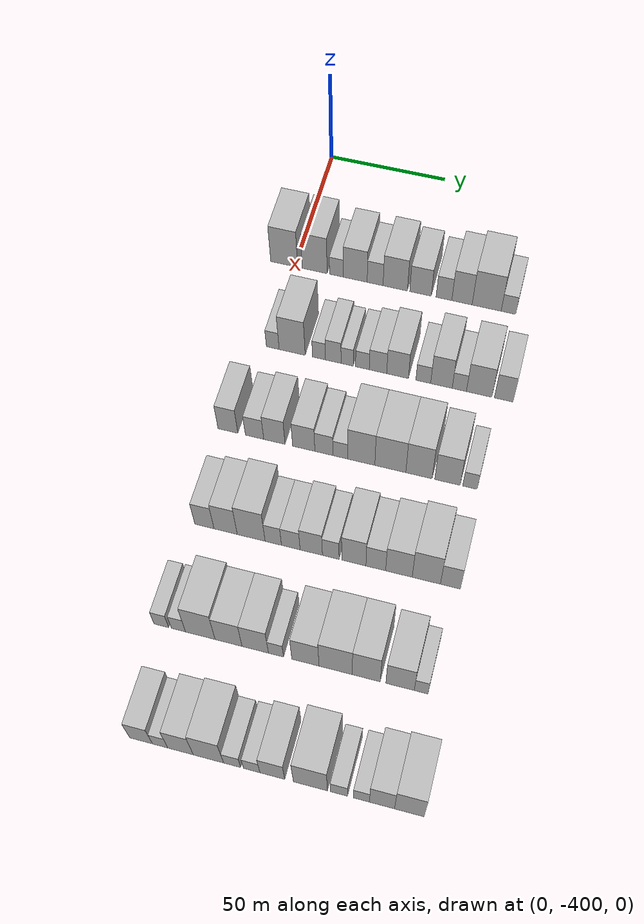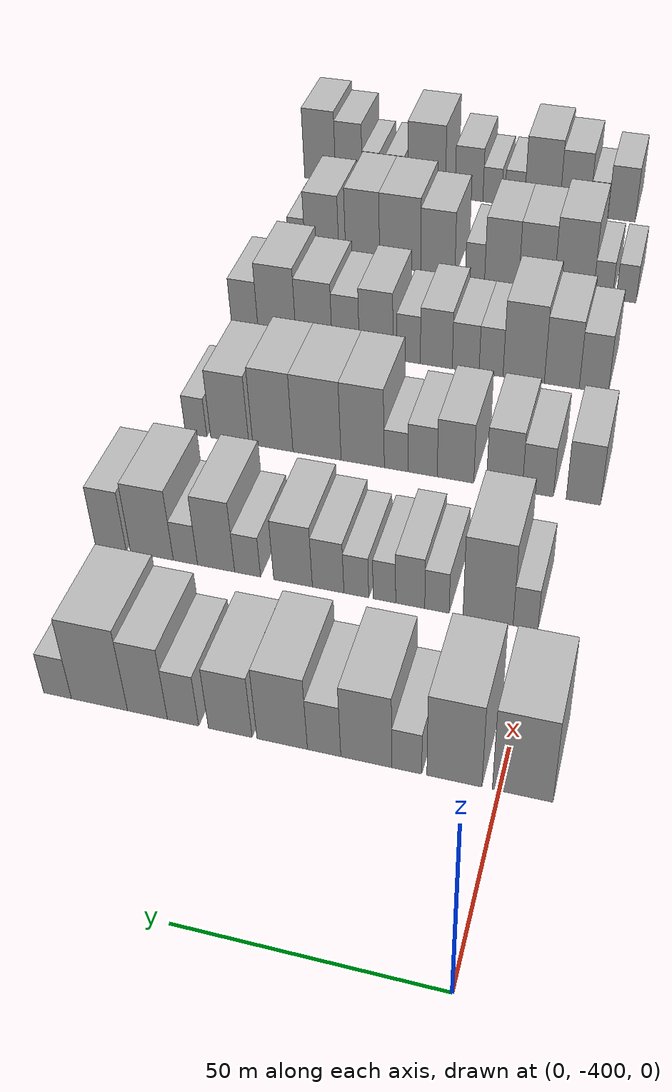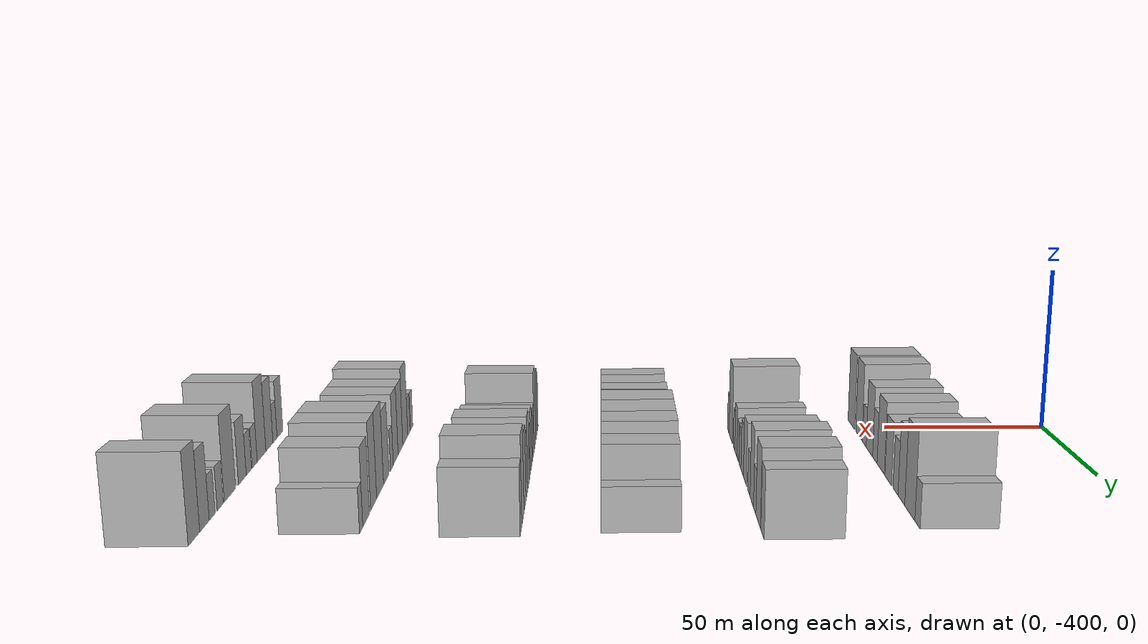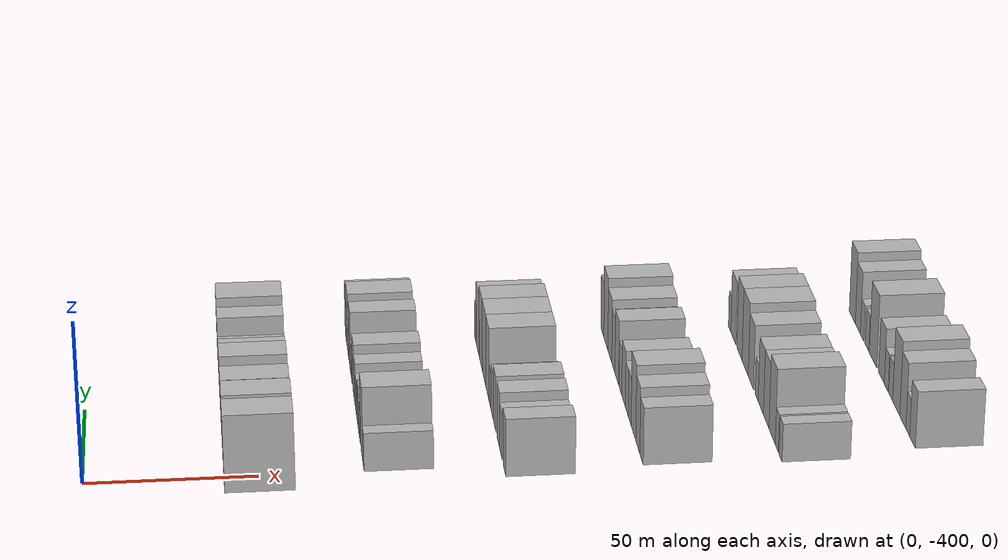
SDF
<sdf version="1.6">
 <world name="default">
  <model name="building_18">
   <static>1</static>
   <pose>50.0000 -404.3878 0 0.000000 0.000000 0.000000</pose>
   <link name="link">
    <pose>0 0 12.00 0 0 0</pose>
    <collision name="collision"><geometry><box><size>20.0000 11.5125 24.0000</size></box></geometry></collision>
    <visual name="visual">
     <cast_shadows>0</cast_shadows>
     <geometry><box><size>20.0000 11.5125 24.0000</size></box></geometry>
     <material>
      <script>
       <uri>model://HANNAS_wall/materials/scripts</uri>
       <uri>model://HANNAS_wall/materials/textures</uri>
       <name>vrc/HANNAS_wall</name>
      </script>
     </material>
    </visual>
   </link>
  </model>
  <model name="building_19">
   <static>1</static>
   <pose>50.0000 -391.3246 0 0.000000 0.000000 0.000000</pose>
   <link name="link">
    <pose>0 0 12.00 0 0 0</pose>
    <collision name="collision"><geometry><box><size>20.0000 10.6138 24.0000</size></box></geometry></collision>
    <visual name="visual">
     <cast_shadows>0</cast_shadows>
     <geometry><box><size>20.0000 10.6138 24.0000</size></box></geometry>
     <material>
      <script>
       <uri>model://HANNAS_wall/materials/scripts</uri>
       <uri>model://HANNAS_wall/materials/textures</uri>
       <name>vrc/HANNAS_wall</name>
      </script>
     </material>
    </visual>
   </link>
  </model>
  <model name="building_20">
   <static>1</static>
   <pose>50.0000 -382.1065 0 0.000000 0.000000 0.000000</pose>
   <link name="link">
    <pose>0 0 6.00 0 0 0</pose>
    <collision name="collision"><geometry><box><size>20.0000 5.8224 12.0000</size></box></geometry></collision>
    <visual name="visual">
     <cast_shadows>0</cast_shadows>
     <geometry><box><size>20.0000 5.8224 12.0000</size></box></geometry>
     <material>
      <script>
       <uri>model://HANNAS_wall/materials/scripts</uri>
       <uri>model://HANNAS_wall/materials/textures</uri>
       <name>vrc/HANNAS_wall</name>
      </script>
     </material>
    </visual>
   </link>
  </model>
  <model name="building_21">
   <static>1</static>
   <pose>50.0000 -374.1370 0 0.000000 0.000000 0.000000</pose>
   <link name="link">
    <pose>0 0 10.50 0 0 0</pose>
    <collision name="collision"><geometry><box><size>20.0000 10.1166 21.0000</size></box></geometry></collision>
    <visual name="visual">
     <cast_shadows>0</cast_shadows>
     <geometry><box><size>20.0000 10.1166 21.0000</size></box></geometry>
     <material>
      <script>
       <uri>model://HANNAS_wall/materials/scripts</uri>
       <uri>model://HANNAS_wall/materials/textures</uri>
       <name>vrc/HANNAS_wall</name>
      </script>
     </material>
    </visual>
   </link>
  </model>
  <model name="building_22">
   <static>1</static>
   <pose>50.0000 -365.7314 0 0.000000 0.000000 0.000000</pose>
   <link name="link">
    <pose>0 0 7.50 0 0 0</pose>
    <collision name="collision"><geometry><box><size>20.0000 6.6946 15.0000</size></box></geometry></collision>
    <visual name="visual">
     <cast_shadows>0</cast_shadows>
     <geometry><box><size>20.0000 6.6946 15.0000</size></box></geometry>
     <material>
      <script>
       <uri>model://HANNAS_wall/materials/scripts</uri>
       <uri>model://HANNAS_wall/materials/textures</uri>
       <name>vrc/HANNAS_wall</name>
      </script>
     </material>
    </visual>
   </link>
  </model>
  <model name="building_23">
   <static>1</static>
   <pose>50.0000 -357.2742 0 0.000000 0.000000 0.000000</pose>
   <link name="link">
    <pose>0 0 10.50 0 0 0</pose>
    <collision name="collision"><geometry><box><size>20.0000 10.2197 21.0000</size></box></geometry></collision>
    <visual name="visual">
     <cast_shadows>0</cast_shadows>
     <geometry><box><size>20.0000 10.2197 21.0000</size></box></geometry>
     <material>
      <script>
       <uri>model://HANNAS_wall/materials/scripts</uri>
       <uri>model://HANNAS_wall/materials/textures</uri>
       <name>vrc/HANNAS_wall</name>
      </script>
     </material>
    </visual>
   </link>
  </model>
  <model name="building_24">
   <static>1</static>
   <pose>50.0000 -346.6693 0 0.000000 0.000000 0.000000</pose>
   <link name="link">
    <pose>0 0 9.00 0 0 0</pose>
    <collision name="collision"><geometry><box><size>20.0000 8.9901 18.0000</size></box></geometry></collision>
    <visual name="visual">
     <cast_shadows>0</cast_shadows>
     <geometry><box><size>20.0000 8.9901 18.0000</size></box></geometry>
     <material>
      <script>
       <uri>model://HANNAS_wall/materials/scripts</uri>
       <uri>model://HANNAS_wall/materials/textures</uri>
       <name>vrc/HANNAS_wall</name>
      </script>
     </material>
    </visual>
   </link>
  </model>
  <model name="building_25">
   <static>1</static>
   <pose>50.0000 -336.9139 0 0.000000 0.000000 0.000000</pose>
   <link name="link">
    <pose>0 0 7.50 0 0 0</pose>
    <collision name="collision"><geometry><box><size>20.0000 6.5207 15.0000</size></box></geometry></collision>
    <visual name="visual">
     <cast_shadows>0</cast_shadows>
     <geometry><box><size>20.0000 6.5207 15.0000</size></box></geometry>
     <material>
      <script>
       <uri>model://HANNAS_wall/materials/scripts</uri>
       <uri>model://HANNAS_wall/materials/textures</uri>
       <name>vrc/HANNAS_wall</name>
      </script>
     </material>
    </visual>
   </link>
  </model>
  <model name="building_26">
   <static>1</static>
   <pose>50.0000 -329.4480 0 0.000000 0.000000 0.000000</pose>
   <link name="link">
    <pose>0 0 10.50 0 0 0</pose>
    <collision name="collision"><geometry><box><size>20.0000 8.4112 21.0000</size></box></geometry></collision>
    <visual name="visual">
     <cast_shadows>0</cast_shadows>
     <geometry><box><size>20.0000 8.4112 21.0000</size></box></geometry>
     <material>
      <script>
       <uri>model://HANNAS_wall/materials/scripts</uri>
       <uri>model://HANNAS_wall/materials/textures</uri>
       <name>vrc/HANNAS_wall</name>
      </script>
     </material>
    </visual>
   </link>
  </model>
  <model name="building_27">
   <static>1</static>
   <pose>50.0000 -319.2474 0 0.000000 0.000000 0.000000</pose>
   <link name="link">
    <pose>0 0 12.00 0 0 0</pose>
    <collision name="collision"><geometry><box><size>20.0000 11.9900 24.0000</size></box></geometry></collision>
    <visual name="visual">
     <cast_shadows>0</cast_shadows>
     <geometry><box><size>20.0000 11.9900 24.0000</size></box></geometry>
     <material>
      <script>
       <uri>model://HANNAS_wall/materials/scripts</uri>
       <uri>model://HANNAS_wall/materials/textures</uri>
       <name>vrc/HANNAS_wall</name>
      </script>
     </material>
    </visual>
   </link>
  </model>
  <model name="building_28">
   <static>1</static>
   <pose>50.0000 -310.2612 0 0.000000 0.000000 0.000000</pose>
   <link name="link">
    <pose>0 0 6.00 0 0 0</pose>
    <collision name="collision"><geometry><box><size>20.0000 5.9823 12.0000</size></box></geometry></collision>
    <visual name="visual">
     <cast_shadows>0</cast_shadows>
     <geometry><box><size>20.0000 5.9823 12.0000</size></box></geometry>
     <material>
      <script>
       <uri>model://HANNAS_wall/materials/scripts</uri>
       <uri>model://HANNAS_wall/materials/textures</uri>
       <name>vrc/HANNAS_wall</name>
      </script>
     </material>
    </visual>
   </link>
  </model>
  <model name="building_156">
   <static>1</static>
   <pose>90.0000 -397.6213 0 0.000000 0.000000 0.000000</pose>
   <link name="link">
    <pose>0 0 6.00 0 0 0</pose>
    <collision name="collision"><geometry><box><size>20.0000 5.2563 12.0000</size></box></geometry></collision>
    <visual name="visual">
     <cast_shadows>0</cast_shadows>
     <geometry><box><size>20.0000 5.2563 12.0000</size></box></geometry>
     <material>
      <script>
       <uri>model://HANNAS_wall/materials/scripts</uri>
       <uri>model://HANNAS_wall/materials/textures</uri>
       <name>vrc/HANNAS_wall</name>
      </script>
     </material>
    </visual>
   </link>
  </model>
  <model name="building_157">
   <static>1</static>
   <pose>90.0000 -389.6263 0 0.000000 0.000000 0.000000</pose>
   <link name="link">
    <pose>0 0 12.00 0 0 0</pose>
    <collision name="collision"><geometry><box><size>20.0000 10.7337 24.0000</size></box></geometry></collision>
    <visual name="visual">
     <cast_shadows>0</cast_shadows>
     <geometry><box><size>20.0000 10.7337 24.0000</size></box></geometry>
     <material>
      <script>
       <uri>model://HANNAS_wall/materials/scripts</uri>
       <uri>model://HANNAS_wall/materials/textures</uri>
       <name>vrc/HANNAS_wall</name>
      </script>
     </material>
    </visual>
   </link>
  </model>
  <model name="building_158">
   <static>1</static>
   <pose>90.0000 -378.6093 0 0.000000 0.000000 0.000000</pose>
   <link name="link">
    <pose>0 0 6.00 0 0 0</pose>
    <collision name="collision"><geometry><box><size>20.0000 5.3004 12.0000</size></box></geometry></collision>
    <visual name="visual">
     <cast_shadows>0</cast_shadows>
     <geometry><box><size>20.0000 5.3004 12.0000</size></box></geometry>
     <material>
      <script>
       <uri>model://HANNAS_wall/materials/scripts</uri>
       <uri>model://HANNAS_wall/materials/textures</uri>
       <name>vrc/HANNAS_wall</name>
      </script>
     </material>
    </visual>
   </link>
  </model>
  <model name="building_159">
   <static>1</static>
   <pose>90.0000 -372.7770 0 0.000000 0.000000 0.000000</pose>
   <link name="link">
    <pose>0 0 7.50 0 0 0</pose>
    <collision name="collision"><geometry><box><size>20.0000 6.3642 15.0000</size></box></geometry></collision>
    <visual name="visual">
     <cast_shadows>0</cast_shadows>
     <geometry><box><size>20.0000 6.3642 15.0000</size></box></geometry>
     <material>
      <script>
       <uri>model://HANNAS_wall/materials/scripts</uri>
       <uri>model://HANNAS_wall/materials/textures</uri>
       <name>vrc/HANNAS_wall</name>
      </script>
     </material>
    </visual>
   </link>
  </model>
  <model name="building_160">
   <static>1</static>
   <pose>90.0000 -367.1229 0 0.000000 0.000000 0.000000</pose>
   <link name="link">
    <pose>0 0 6.00 0 0 0</pose>
    <collision name="collision"><geometry><box><size>20.0000 4.9439 12.0000</size></box></geometry></collision>
    <visual name="visual">
     <cast_shadows>0</cast_shadows>
     <geometry><box><size>20.0000 4.9439 12.0000</size></box></geometry>
     <material>
      <script>
       <uri>model://HANNAS_wall/materials/scripts</uri>
       <uri>model://HANNAS_wall/materials/textures</uri>
       <name>vrc/HANNAS_wall</name>
      </script>
     </material>
    </visual>
   </link>
  </model>
  <model name="building_161">
   <static>1</static>
   <pose>90.0000 -360.8892 0 0.000000 0.000000 0.000000</pose>
   <link name="link">
    <pose>0 0 6.00 0 0 0</pose>
    <collision name="collision"><geometry><box><size>20.0000 5.5235 12.0000</size></box></geometry></collision>
    <visual name="visual">
     <cast_shadows>0</cast_shadows>
     <geometry><box><size>20.0000 5.5235 12.0000</size></box></geometry>
     <material>
      <script>
       <uri>model://HANNAS_wall/materials/scripts</uri>
       <uri>model://HANNAS_wall/materials/textures</uri>
       <name>vrc/HANNAS_wall</name>
      </script>
     </material>
    </visual>
   </link>
  </model>
  <model name="building_162">
   <static>1</static>
   <pose>90.0000 -354.5945 0 0.000000 0.000000 0.000000</pose>
   <link name="link">
    <pose>0 0 7.50 0 0 0</pose>
    <collision name="collision"><geometry><box><size>20.0000 7.0658 15.0000</size></box></geometry></collision>
    <visual name="visual">
     <cast_shadows>0</cast_shadows>
     <geometry><box><size>20.0000 7.0658 15.0000</size></box></geometry>
     <material>
      <script>
       <uri>model://HANNAS_wall/materials/scripts</uri>
       <uri>model://HANNAS_wall/materials/textures</uri>
       <name>vrc/HANNAS_wall</name>
      </script>
     </material>
    </visual>
   </link>
  </model>
  <model name="building_163">
   <static>1</static>
   <pose>90.0000 -346.6843 0 0.000000 0.000000 0.000000</pose>
   <link name="link">
    <pose>0 0 9.00 0 0 0</pose>
    <collision name="collision"><geometry><box><size>20.0000 8.7546 18.0000</size></box></geometry></collision>
    <visual name="visual">
     <cast_shadows>0</cast_shadows>
     <geometry><box><size>20.0000 8.7546 18.0000</size></box></geometry>
     <material>
      <script>
       <uri>model://HANNAS_wall/materials/scripts</uri>
       <uri>model://HANNAS_wall/materials/textures</uri>
       <name>vrc/HANNAS_wall</name>
      </script>
     </material>
    </visual>
   </link>
  </model>
  <model name="building_164">
   <static>1</static>
   <pose>90.0000 -336.3396 0 0.000000 0.000000 0.000000</pose>
   <link name="link">
    <pose>0 0 6.00 0 0 0</pose>
    <collision name="collision"><geometry><box><size>20.0000 5.9350 12.0000</size></box></geometry></collision>
    <visual name="visual">
     <cast_shadows>0</cast_shadows>
     <geometry><box><size>20.0000 5.9350 12.0000</size></box></geometry>
     <material>
      <script>
       <uri>model://HANNAS_wall/materials/scripts</uri>
       <uri>model://HANNAS_wall/materials/textures</uri>
       <name>vrc/HANNAS_wall</name>
      </script>
     </material>
    </visual>
   </link>
  </model>
  <model name="building_165">
   <static>1</static>
   <pose>90.0000 -329.0787 0 0.000000 0.000000 0.000000</pose>
   <link name="link">
    <pose>0 0 10.50 0 0 0</pose>
    <collision name="collision"><geometry><box><size>20.0000 8.5867 21.0000</size></box></geometry></collision>
    <visual name="visual">
     <cast_shadows>0</cast_shadows>
     <geometry><box><size>20.0000 8.5867 21.0000</size></box></geometry>
     <material>
      <script>
       <uri>model://HANNAS_wall/materials/scripts</uri>
       <uri>model://HANNAS_wall/materials/textures</uri>
       <name>vrc/HANNAS_wall</name>
      </script>
     </material>
    </visual>
   </link>
  </model>
  <model name="building_166">
   <static>1</static>
   <pose>90.0000 -321.9522 0 0.000000 0.000000 0.000000</pose>
   <link name="link">
    <pose>0 0 6.00 0 0 0</pose>
    <collision name="collision"><geometry><box><size>20.0000 5.6663 12.0000</size></box></geometry></collision>
    <visual name="visual">
     <cast_shadows>0</cast_shadows>
     <geometry><box><size>20.0000 5.6663 12.0000</size></box></geometry>
     <material>
      <script>
       <uri>model://HANNAS_wall/materials/scripts</uri>
       <uri>model://HANNAS_wall/materials/textures</uri>
       <name>vrc/HANNAS_wall</name>
      </script>
     </material>
    </visual>
   </link>
  </model>
  <model name="building_167">
   <static>1</static>
   <pose>90.0000 -314.0695 0 0.000000 0.000000 0.000000</pose>
   <link name="link">
    <pose>0 0 10.50 0 0 0</pose>
    <collision name="collision"><geometry><box><size>20.0000 10.0991 21.0000</size></box></geometry></collision>
    <visual name="visual">
     <cast_shadows>0</cast_shadows>
     <geometry><box><size>20.0000 10.0991 21.0000</size></box></geometry>
     <material>
      <script>
       <uri>model://HANNAS_wall/materials/scripts</uri>
       <uri>model://HANNAS_wall/materials/textures</uri>
       <name>vrc/HANNAS_wall</name>
      </script>
     </material>
    </visual>
   </link>
  </model>
  <model name="building_168">
   <static>1</static>
   <pose>90.0000 -304.3371 0 0.000000 0.000000 0.000000</pose>
   <link name="link">
    <pose>0 0 9.00 0 0 0</pose>
    <collision name="collision"><geometry><box><size>20.0000 7.3657 18.0000</size></box></geometry></collision>
    <visual name="visual">
     <cast_shadows>0</cast_shadows>
     <geometry><box><size>20.0000 7.3657 18.0000</size></box></geometry>
     <material>
      <script>
       <uri>model://HANNAS_wall/materials/scripts</uri>
       <uri>model://HANNAS_wall/materials/textures</uri>
       <name>vrc/HANNAS_wall</name>
      </script>
     </material>
    </visual>
   </link>
  </model>
  <model name="building_297">
   <static>1</static>
   <pose>130.0000 -403.8027 0 0.000000 0.000000 0.000000</pose>
   <link name="link">
    <pose>0 0 9.00 0 0 0</pose>
    <collision name="collision"><geometry><box><size>20.0000 7.9387 18.0000</size></box></geometry></collision>
    <visual name="visual">
     <cast_shadows>0</cast_shadows>
     <geometry><box><size>20.0000 7.9387 18.0000</size></box></geometry>
     <material>
      <script>
       <uri>model://HANNAS_wall/materials/scripts</uri>
       <uri>model://HANNAS_wall/materials/textures</uri>
       <name>vrc/HANNAS_wall</name>
      </script>
     </material>
    </visual>
   </link>
  </model>
  <model name="building_298">
   <static>1</static>
   <pose>130.0000 -393.1809 0 0.000000 0.000000 0.000000</pose>
   <link name="link">
    <pose>0 0 7.50 0 0 0</pose>
    <collision name="collision"><geometry><box><size>20.0000 7.3049 15.0000</size></box></geometry></collision>
    <visual name="visual">
     <cast_shadows>0</cast_shadows>
     <geometry><box><size>20.0000 7.3049 15.0000</size></box></geometry>
     <material>
      <script>
       <uri>model://HANNAS_wall/materials/scripts</uri>
       <uri>model://HANNAS_wall/materials/textures</uri>
       <name>vrc/HANNAS_wall</name>
      </script>
     </material>
    </visual>
   </link>
  </model>
  <model name="building_299">
   <static>1</static>
   <pose>130.0000 -385.3023 0 0.000000 0.000000 0.000000</pose>
   <link name="link">
    <pose>0 0 9.00 0 0 0</pose>
    <collision name="collision"><geometry><box><size>20.0000 8.4523 18.0000</size></box></geometry></collision>
    <visual name="visual">
     <cast_shadows>0</cast_shadows>
     <geometry><box><size>20.0000 8.4523 18.0000</size></box></geometry>
     <material>
      <script>
       <uri>model://HANNAS_wall/materials/scripts</uri>
       <uri>model://HANNAS_wall/materials/textures</uri>
       <name>vrc/HANNAS_wall</name>
      </script>
     </material>
    </visual>
   </link>
  </model>
  <model name="building_300">
   <static>1</static>
   <pose>130.0000 -373.6968 0 0.000000 0.000000 0.000000</pose>
   <link name="link">
    <pose>0 0 9.00 0 0 0</pose>
    <collision name="collision"><geometry><box><size>20.0000 8.7587 18.0000</size></box></geometry></collision>
    <visual name="visual">
     <cast_shadows>0</cast_shadows>
     <geometry><box><size>20.0000 8.7587 18.0000</size></box></geometry>
     <material>
      <script>
       <uri>model://HANNAS_wall/materials/scripts</uri>
       <uri>model://HANNAS_wall/materials/textures</uri>
       <name>vrc/HANNAS_wall</name>
      </script>
     </material>
    </visual>
   </link>
  </model>
  <model name="building_301">
   <static>1</static>
   <pose>130.0000 -365.7776 0 0.000000 0.000000 0.000000</pose>
   <link name="link">
    <pose>0 0 7.50 0 0 0</pose>
    <collision name="collision"><geometry><box><size>20.0000 7.0797 15.0000</size></box></geometry></collision>
    <visual name="visual">
     <cast_shadows>0</cast_shadows>
     <geometry><box><size>20.0000 7.0797 15.0000</size></box></geometry>
     <material>
      <script>
       <uri>model://HANNAS_wall/materials/scripts</uri>
       <uri>model://HANNAS_wall/materials/textures</uri>
       <name>vrc/HANNAS_wall</name>
      </script>
     </material>
    </visual>
   </link>
  </model>
  <model name="building_302">
   <static>1</static>
   <pose>130.0000 -359.3675 0 0.000000 0.000000 0.000000</pose>
   <link name="link">
    <pose>0 0 6.00 0 0 0</pose>
    <collision name="collision"><geometry><box><size>20.0000 5.7405 12.0000</size></box></geometry></collision>
    <visual name="visual">
     <cast_shadows>0</cast_shadows>
     <geometry><box><size>20.0000 5.7405 12.0000</size></box></geometry>
     <material>
      <script>
       <uri>model://HANNAS_wall/materials/scripts</uri>
       <uri>model://HANNAS_wall/materials/textures</uri>
       <name>vrc/HANNAS_wall</name>
      </script>
     </material>
    </visual>
   </link>
  </model>
  <model name="building_303">
   <static>1</static>
   <pose>130.0000 -351.1892 0 0.000000 0.000000 0.000000</pose>
   <link name="link">
    <pose>0 0 12.00 0 0 0</pose>
    <collision name="collision"><geometry><box><size>20.0000 10.6160 24.0000</size></box></geometry></collision>
    <visual name="visual">
     <cast_shadows>0</cast_shadows>
     <geometry><box><size>20.0000 10.6160 24.0000</size></box></geometry>
     <material>
      <script>
       <uri>model://HANNAS_wall/materials/scripts</uri>
       <uri>model://HANNAS_wall/materials/textures</uri>
       <name>vrc/HANNAS_wall</name>
      </script>
     </material>
    </visual>
   </link>
  </model>
  <model name="building_304">
   <static>1</static>
   <pose>130.0000 -339.8845 0 0.000000 0.000000 0.000000</pose>
   <link name="link">
    <pose>0 0 12.00 0 0 0</pose>
    <collision name="collision"><geometry><box><size>20.0000 11.9934 24.0000</size></box></geometry></collision>
    <visual name="visual">
     <cast_shadows>0</cast_shadows>
     <geometry><box><size>20.0000 11.9934 24.0000</size></box></geometry>
     <material>
      <script>
       <uri>model://HANNAS_wall/materials/scripts</uri>
       <uri>model://HANNAS_wall/materials/textures</uri>
       <name>vrc/HANNAS_wall</name>
      </script>
     </material>
    </visual>
   </link>
  </model>
  <model name="building_305">
   <static>1</static>
   <pose>130.0000 -328.8275 0 0.000000 0.000000 0.000000</pose>
   <link name="link">
    <pose>0 0 12.00 0 0 0</pose>
    <collision name="collision"><geometry><box><size>20.0000 10.1206 24.0000</size></box></geometry></collision>
    <visual name="visual">
     <cast_shadows>0</cast_shadows>
     <geometry><box><size>20.0000 10.1206 24.0000</size></box></geometry>
     <material>
      <script>
       <uri>model://HANNAS_wall/materials/scripts</uri>
       <uri>model://HANNAS_wall/materials/textures</uri>
       <name>vrc/HANNAS_wall</name>
      </script>
     </material>
    </visual>
   </link>
  </model>
  <model name="building_306">
   <static>1</static>
   <pose>130.0000 -317.8987 0 0.000000 0.000000 0.000000</pose>
   <link name="link">
    <pose>0 0 10.50 0 0 0</pose>
    <collision name="collision"><geometry><box><size>20.0000 9.7370 21.0000</size></box></geometry></collision>
    <visual name="visual">
     <cast_shadows>0</cast_shadows>
     <geometry><box><size>20.0000 9.7370 21.0000</size></box></geometry>
     <material>
      <script>
       <uri>model://HANNAS_wall/materials/scripts</uri>
       <uri>model://HANNAS_wall/materials/textures</uri>
       <name>vrc/HANNAS_wall</name>
      </script>
     </material>
    </visual>
   </link>
  </model>
  <model name="building_307">
   <static>1</static>
   <pose>130.0000 -309.2691 0 0.000000 0.000000 0.000000</pose>
   <link name="link">
    <pose>0 0 6.00 0 0 0</pose>
    <collision name="collision"><geometry><box><size>20.0000 5.5223 12.0000</size></box></geometry></collision>
    <visual name="visual">
     <cast_shadows>0</cast_shadows>
     <geometry><box><size>20.0000 5.5223 12.0000</size></box></geometry>
     <material>
      <script>
       <uri>model://HANNAS_wall/materials/scripts</uri>
       <uri>model://HANNAS_wall/materials/textures</uri>
       <name>vrc/HANNAS_wall</name>
      </script>
     </material>
    </visual>
   </link>
  </model>
  <model name="building_438">
   <static>1</static>
   <pose>170.0000 -400.4232 0 0.000000 0.000000 0.000000</pose>
   <link name="link">
    <pose>0 0 9.00 0 0 0</pose>
    <collision name="collision"><geometry><box><size>20.0000 7.3727 18.0000</size></box></geometry></collision>
    <visual name="visual">
     <cast_shadows>0</cast_shadows>
     <geometry><box><size>20.0000 7.3727 18.0000</size></box></geometry>
     <material>
      <script>
       <uri>model://HANNAS_wall/materials/scripts</uri>
       <uri>model://HANNAS_wall/materials/textures</uri>
       <name>vrc/HANNAS_wall</name>
      </script>
     </material>
    </visual>
   </link>
  </model>
  <model name="building_439">
   <static>1</static>
   <pose>170.0000 -392.2818 0 0.000000 0.000000 0.000000</pose>
   <link name="link">
    <pose>0 0 10.50 0 0 0</pose>
    <collision name="collision"><geometry><box><size>20.0000 8.9101 21.0000</size></box></geometry></collision>
    <visual name="visual">
     <cast_shadows>0</cast_shadows>
     <geometry><box><size>20.0000 8.9101 21.0000</size></box></geometry>
     <material>
      <script>
       <uri>model://HANNAS_wall/materials/scripts</uri>
       <uri>model://HANNAS_wall/materials/textures</uri>
       <name>vrc/HANNAS_wall</name>
      </script>
     </material>
    </visual>
   </link>
  </model>
  <model name="building_440">
   <static>1</static>
   <pose>170.0000 -382.5025 0 0.000000 0.000000 0.000000</pose>
   <link name="link">
    <pose>0 0 12.00 0 0 0</pose>
    <collision name="collision"><geometry><box><size>20.0000 10.6485 24.0000</size></box></geometry></collision>
    <visual name="visual">
     <cast_shadows>0</cast_shadows>
     <geometry><box><size>20.0000 10.6485 24.0000</size></box></geometry>
     <material>
      <script>
       <uri>model://HANNAS_wall/materials/scripts</uri>
       <uri>model://HANNAS_wall/materials/textures</uri>
       <name>vrc/HANNAS_wall</name>
      </script>
     </material>
    </visual>
   </link>
  </model>
  <model name="building_441">
   <static>1</static>
   <pose>170.0000 -374.0699 0 0.000000 0.000000 0.000000</pose>
   <link name="link">
    <pose>0 0 7.50 0 0 0</pose>
    <collision name="collision"><geometry><box><size>20.0000 6.2168 15.0000</size></box></geometry></collision>
    <visual name="visual">
     <cast_shadows>0</cast_shadows>
     <geometry><box><size>20.0000 6.2168 15.0000</size></box></geometry>
     <material>
      <script>
       <uri>model://HANNAS_wall/materials/scripts</uri>
       <uri>model://HANNAS_wall/materials/textures</uri>
       <name>vrc/HANNAS_wall</name>
      </script>
     </material>
    </visual>
   </link>
  </model>
  <model name="building_442">
   <static>1</static>
   <pose>170.0000 -367.4453 0 0.000000 0.000000 0.000000</pose>
   <link name="link">
    <pose>0 0 7.50 0 0 0</pose>
    <collision name="collision"><geometry><box><size>20.0000 7.0323 15.0000</size></box></geometry></collision>
    <visual name="visual">
     <cast_shadows>0</cast_shadows>
     <geometry><box><size>20.0000 7.0323 15.0000</size></box></geometry>
     <material>
      <script>
       <uri>model://HANNAS_wall/materials/scripts</uri>
       <uri>model://HANNAS_wall/materials/textures</uri>
       <name>vrc/HANNAS_wall</name>
      </script>
     </material>
    </visual>
   </link>
  </model>
  <model name="building_443">
   <static>1</static>
   <pose>170.0000 -359.7194 0 0.000000 0.000000 0.000000</pose>
   <link name="link">
    <pose>0 0 9.00 0 0 0</pose>
    <collision name="collision"><geometry><box><size>20.0000 8.4195 18.0000</size></box></geometry></collision>
    <visual name="visual">
     <cast_shadows>0</cast_shadows>
     <geometry><box><size>20.0000 8.4195 18.0000</size></box></geometry>
     <material>
      <script>
       <uri>model://HANNAS_wall/materials/scripts</uri>
       <uri>model://HANNAS_wall/materials/textures</uri>
       <name>vrc/HANNAS_wall</name>
      </script>
     </material>
    </visual>
   </link>
  </model>
  <model name="building_444">
   <static>1</static>
   <pose>170.0000 -352.3840 0 0.000000 0.000000 0.000000</pose>
   <link name="link">
    <pose>0 0 7.50 0 0 0</pose>
    <collision name="collision"><geometry><box><size>20.0000 6.2514 15.0000</size></box></geometry></collision>
    <visual name="visual">
     <cast_shadows>0</cast_shadows>
     <geometry><box><size>20.0000 6.2514 15.0000</size></box></geometry>
     <material>
      <script>
       <uri>model://HANNAS_wall/materials/scripts</uri>
       <uri>model://HANNAS_wall/materials/textures</uri>
       <name>vrc/HANNAS_wall</name>
      </script>
     </material>
    </visual>
   </link>
  </model>
  <model name="building_445">
   <static>1</static>
   <pose>170.0000 -343.7347 0 0.000000 0.000000 0.000000</pose>
   <link name="link">
    <pose>0 0 10.50 0 0 0</pose>
    <collision name="collision"><geometry><box><size>20.0000 9.0472 21.0000</size></box></geometry></collision>
    <visual name="visual">
     <cast_shadows>0</cast_shadows>
     <geometry><box><size>20.0000 9.0472 21.0000</size></box></geometry>
     <material>
      <script>
       <uri>model://HANNAS_wall/materials/scripts</uri>
       <uri>model://HANNAS_wall/materials/textures</uri>
       <name>vrc/HANNAS_wall</name>
      </script>
     </material>
    </visual>
   </link>
  </model>
  <model name="building_446">
   <static>1</static>
   <pose>170.0000 -335.5484 0 0.000000 0.000000 0.000000</pose>
   <link name="link">
    <pose>0 0 9.00 0 0 0</pose>
    <collision name="collision"><geometry><box><size>20.0000 7.3255 18.0000</size></box></geometry></collision>
    <visual name="visual">
     <cast_shadows>0</cast_shadows>
     <geometry><box><size>20.0000 7.3255 18.0000</size></box></geometry>
     <material>
      <script>
       <uri>model://HANNAS_wall/materials/scripts</uri>
       <uri>model://HANNAS_wall/materials/textures</uri>
       <name>vrc/HANNAS_wall</name>
      </script>
     </material>
    </visual>
   </link>
  </model>
  <model name="building_447">
   <static>1</static>
   <pose>170.0000 -326.9723 0 0.000000 0.000000 0.000000</pose>
   <link name="link">
    <pose>0 0 10.50 0 0 0</pose>
    <collision name="collision"><geometry><box><size>20.0000 9.8266 21.0000</size></box></geometry></collision>
    <visual name="visual">
     <cast_shadows>0</cast_shadows>
     <geometry><box><size>20.0000 9.8266 21.0000</size></box></geometry>
     <material>
      <script>
       <uri>model://HANNAS_wall/materials/scripts</uri>
       <uri>model://HANNAS_wall/materials/textures</uri>
       <name>vrc/HANNAS_wall</name>
      </script>
     </material>
    </visual>
   </link>
  </model>
  <model name="building_448">
   <static>1</static>
   <pose>170.0000 -316.8596 0 0.000000 0.000000 0.000000</pose>
   <link name="link">
    <pose>0 0 12.00 0 0 0</pose>
    <collision name="collision"><geometry><box><size>20.0000 10.3987 24.0000</size></box></geometry></collision>
    <visual name="visual">
     <cast_shadows>0</cast_shadows>
     <geometry><box><size>20.0000 10.3987 24.0000</size></box></geometry>
     <material>
      <script>
       <uri>model://HANNAS_wall/materials/scripts</uri>
       <uri>model://HANNAS_wall/materials/textures</uri>
       <name>vrc/HANNAS_wall</name>
      </script>
     </material>
    </visual>
   </link>
  </model>
  <model name="building_449">
   <static>1</static>
   <pose>170.0000 -308.0059 0 0.000000 0.000000 0.000000</pose>
   <link name="link">
    <pose>0 0 9.00 0 0 0</pose>
    <collision name="collision"><geometry><box><size>20.0000 7.3088 18.0000</size></box></geometry></collision>
    <visual name="visual">
     <cast_shadows>0</cast_shadows>
     <geometry><box><size>20.0000 7.3088 18.0000</size></box></geometry>
     <material>
      <script>
       <uri>model://HANNAS_wall/materials/scripts</uri>
       <uri>model://HANNAS_wall/materials/textures</uri>
       <name>vrc/HANNAS_wall</name>
      </script>
     </material>
    </visual>
   </link>
  </model>
  <model name="building_578">
   <static>1</static>
   <pose>210.0000 -403.5124 0 0.000000 0.000000 0.000000</pose>
   <link name="link">
    <pose>0 0 6.00 0 0 0</pose>
    <collision name="collision"><geometry><box><size>20.0000 5.4623 12.0000</size></box></geometry></collision>
    <visual name="visual">
     <cast_shadows>0</cast_shadows>
     <geometry><box><size>20.0000 5.4623 12.0000</size></box></geometry>
     <material>
      <script>
       <uri>model://HANNAS_wall/materials/scripts</uri>
       <uri>model://HANNAS_wall/materials/textures</uri>
       <name>vrc/HANNAS_wall</name>
      </script>
     </material>
    </visual>
   </link>
  </model>
  <model name="building_579">
   <static>1</static>
   <pose>210.0000 -397.1574 0 0.000000 0.000000 0.000000</pose>
   <link name="link">
    <pose>0 0 6.00 0 0 0</pose>
    <collision name="collision"><geometry><box><size>20.0000 5.2477 12.0000</size></box></geometry></collision>
    <visual name="visual">
     <cast_shadows>0</cast_shadows>
     <geometry><box><size>20.0000 5.2477 12.0000</size></box></geometry>
     <material>
      <script>
       <uri>model://HANNAS_wall/materials/scripts</uri>
       <uri>model://HANNAS_wall/materials/textures</uri>
       <name>vrc/HANNAS_wall</name>
      </script>
     </material>
    </visual>
   </link>
  </model>
  <model name="building_580">
   <static>1</static>
   <pose>210.0000 -389.0959 0 0.000000 0.000000 0.000000</pose>
   <link name="link">
    <pose>0 0 12.00 0 0 0</pose>
    <collision name="collision"><geometry><box><size>20.0000 10.8753 24.0000</size></box></geometry></collision>
    <visual name="visual">
     <cast_shadows>0</cast_shadows>
     <geometry><box><size>20.0000 10.8753 24.0000</size></box></geometry>
     <material>
      <script>
       <uri>model://HANNAS_wall/materials/scripts</uri>
       <uri>model://HANNAS_wall/materials/textures</uri>
       <name>vrc/HANNAS_wall</name>
      </script>
     </material>
    </visual>
   </link>
  </model>
  <model name="building_581">
   <static>1</static>
   <pose>210.0000 -378.7184 0 0.000000 0.000000 0.000000</pose>
   <link name="link">
    <pose>0 0 10.50 0 0 0</pose>
    <collision name="collision"><geometry><box><size>20.0000 9.8799 21.0000</size></box></geometry></collision>
    <visual name="visual">
     <cast_shadows>0</cast_shadows>
     <geometry><box><size>20.0000 9.8799 21.0000</size></box></geometry>
     <material>
      <script>
       <uri>model://HANNAS_wall/materials/scripts</uri>
       <uri>model://HANNAS_wall/materials/textures</uri>
       <name>vrc/HANNAS_wall</name>
      </script>
     </material>
    </visual>
   </link>
  </model>
  <model name="building_582">
   <static>1</static>
   <pose>210.0000 -368.9658 0 0.000000 0.000000 0.000000</pose>
   <link name="link">
    <pose>0 0 10.50 0 0 0</pose>
    <collision name="collision"><geometry><box><size>20.0000 9.6252 21.0000</size></box></geometry></collision>
    <visual name="visual">
     <cast_shadows>0</cast_shadows>
     <geometry><box><size>20.0000 9.6252 21.0000</size></box></geometry>
     <material>
      <script>
       <uri>model://HANNAS_wall/materials/scripts</uri>
       <uri>model://HANNAS_wall/materials/textures</uri>
       <name>vrc/HANNAS_wall</name>
      </script>
     </material>
    </visual>
   </link>
  </model>
  <model name="building_583">
   <static>1</static>
   <pose>210.0000 -361.4175 0 0.000000 0.000000 0.000000</pose>
   <link name="link">
    <pose>0 0 6.00 0 0 0</pose>
    <collision name="collision"><geometry><box><size>20.0000 5.4715 12.0000</size></box></geometry></collision>
    <visual name="visual">
     <cast_shadows>0</cast_shadows>
     <geometry><box><size>20.0000 5.4715 12.0000</size></box></geometry>
     <material>
      <script>
       <uri>model://HANNAS_wall/materials/scripts</uri>
       <uri>model://HANNAS_wall/materials/textures</uri>
       <name>vrc/HANNAS_wall</name>
      </script>
     </material>
    </visual>
   </link>
  </model>
  <model name="building_584">
   <static>1</static>
   <pose>210.0000 -350.7772 0 0.000000 0.000000 0.000000</pose>
   <link name="link">
    <pose>0 0 10.50 0 0 0</pose>
    <collision name="collision"><geometry><box><size>20.0000 9.8090 21.0000</size></box></geometry></collision>
    <visual name="visual">
     <cast_shadows>0</cast_shadows>
     <geometry><box><size>20.0000 9.8090 21.0000</size></box></geometry>
     <material>
      <script>
       <uri>model://HANNAS_wall/materials/scripts</uri>
       <uri>model://HANNAS_wall/materials/textures</uri>
       <name>vrc/HANNAS_wall</name>
      </script>
     </material>
    </visual>
   </link>
  </model>
  <model name="building_585">
   <static>1</static>
   <pose>210.0000 -339.9168 0 0.000000 0.000000 0.000000</pose>
   <link name="link">
    <pose>0 0 12.00 0 0 0</pose>
    <collision name="collision"><geometry><box><size>20.0000 11.9120 24.0000</size></box></geometry></collision>
    <visual name="visual">
     <cast_shadows>0</cast_shadows>
     <geometry><box><size>20.0000 11.9120 24.0000</size></box></geometry>
     <material>
      <script>
       <uri>model://HANNAS_wall/materials/scripts</uri>
       <uri>model://HANNAS_wall/materials/textures</uri>
       <name>vrc/HANNAS_wall</name>
      </script>
     </material>
    </visual>
   </link>
  </model>
  <model name="building_586">
   <static>1</static>
   <pose>210.0000 -328.9915 0 0.000000 0.000000 0.000000</pose>
   <link name="link">
    <pose>0 0 12.00 0 0 0</pose>
    <collision name="collision"><geometry><box><size>20.0000 9.9385 24.0000</size></box></geometry></collision>
    <visual name="visual">
     <cast_shadows>0</cast_shadows>
     <geometry><box><size>20.0000 9.9385 24.0000</size></box></geometry>
     <material>
      <script>
       <uri>model://HANNAS_wall/materials/scripts</uri>
       <uri>model://HANNAS_wall/materials/textures</uri>
       <name>vrc/HANNAS_wall</name>
      </script>
     </material>
    </visual>
   </link>
  </model>
  <model name="building_587">
   <static>1</static>
   <pose>210.0000 -317.0041 0 0.000000 0.000000 0.000000</pose>
   <link name="link">
    <pose>0 0 10.50 0 0 0</pose>
    <collision name="collision"><geometry><box><size>20.0000 10.0364 21.0000</size></box></geometry></collision>
    <visual name="visual">
     <cast_shadows>0</cast_shadows>
     <geometry><box><size>20.0000 10.0364 21.0000</size></box></geometry>
     <material>
      <script>
       <uri>model://HANNAS_wall/materials/scripts</uri>
       <uri>model://HANNAS_wall/materials/textures</uri>
       <name>vrc/HANNAS_wall</name>
      </script>
     </material>
    </visual>
   </link>
  </model>
  <model name="building_588">
   <static>1</static>
   <pose>210.0000 -309.5587 0 0.000000 0.000000 0.000000</pose>
   <link name="link">
    <pose>0 0 6.00 0 0 0</pose>
    <collision name="collision"><geometry><box><size>20.0000 4.8543 12.0000</size></box></geometry></collision>
    <visual name="visual">
     <cast_shadows>0</cast_shadows>
     <geometry><box><size>20.0000 4.8543 12.0000</size></box></geometry>
     <material>
      <script>
       <uri>model://HANNAS_wall/materials/scripts</uri>
       <uri>model://HANNAS_wall/materials/textures</uri>
       <name>vrc/HANNAS_wall</name>
      </script>
     </material>
    </visual>
   </link>
  </model>
  <model name="building_717">
   <static>1</static>
   <pose>250.0000 -397.1141 0 0.000000 0.000000 0.000000</pose>
   <link name="link">
    <pose>0 0 9.00 0 0 0</pose>
    <collision name="collision"><geometry><box><size>20.0000 8.0828 18.0000</size></box></geometry></collision>
    <visual name="visual">
     <cast_shadows>0</cast_shadows>
     <geometry><box><size>20.0000 8.0828 18.0000</size></box></geometry>
     <material>
      <script>
       <uri>model://HANNAS_wall/materials/scripts</uri>
       <uri>model://HANNAS_wall/materials/textures</uri>
       <name>vrc/HANNAS_wall</name>
      </script>
     </material>
    </visual>
   </link>
  </model>
  <model name="building_718">
   <static>1</static>
   <pose>250.0000 -390.3558 0 0.000000 0.000000 0.000000</pose>
   <link name="link">
    <pose>0 0 6.00 0 0 0</pose>
    <collision name="collision"><geometry><box><size>20.0000 5.4338 12.0000</size></box></geometry></collision>
    <visual name="visual">
     <cast_shadows>0</cast_shadows>
     <geometry><box><size>20.0000 5.4338 12.0000</size></box></geometry>
     <material>
      <script>
       <uri>model://HANNAS_wall/materials/scripts</uri>
       <uri>model://HANNAS_wall/materials/textures</uri>
       <name>vrc/HANNAS_wall</name>
      </script>
     </material>
    </visual>
   </link>
  </model>
  <model name="building_719">
   <static>1</static>
   <pose>250.0000 -383.1364 0 0.000000 0.000000 0.000000</pose>
   <link name="link">
    <pose>0 0 10.50 0 0 0</pose>
    <collision name="collision"><geometry><box><size>20.0000 9.0048 21.0000</size></box></geometry></collision>
    <visual name="visual">
     <cast_shadows>0</cast_shadows>
     <geometry><box><size>20.0000 9.0048 21.0000</size></box></geometry>
     <material>
      <script>
       <uri>model://HANNAS_wall/materials/scripts</uri>
       <uri>model://HANNAS_wall/materials/textures</uri>
       <name>vrc/HANNAS_wall</name>
      </script>
     </material>
    </visual>
   </link>
  </model>
  <model name="building_720">
   <static>1</static>
   <pose>250.0000 -373.3266 0 0.000000 0.000000 0.000000</pose>
   <link name="link">
    <pose>0 0 12.00 0 0 0</pose>
    <collision name="collision"><geometry><box><size>20.0000 10.6148 24.0000</size></box></geometry></collision>
    <visual name="visual">
     <cast_shadows>0</cast_shadows>
     <geometry><box><size>20.0000 10.6148 24.0000</size></box></geometry>
     <material>
      <script>
       <uri>model://HANNAS_wall/materials/scripts</uri>
       <uri>model://HANNAS_wall/materials/textures</uri>
       <name>vrc/HANNAS_wall</name>
      </script>
     </material>
    </visual>
   </link>
  </model>
  <model name="building_721">
   <static>1</static>
   <pose>250.0000 -365.0395 0 0.000000 0.000000 0.000000</pose>
   <link name="link">
    <pose>0 0 6.00 0 0 0</pose>
    <collision name="collision"><geometry><box><size>20.0000 5.9594 12.0000</size></box></geometry></collision>
    <visual name="visual">
     <cast_shadows>0</cast_shadows>
     <geometry><box><size>20.0000 5.9594 12.0000</size></box></geometry>
     <material>
      <script>
       <uri>model://HANNAS_wall/materials/scripts</uri>
       <uri>model://HANNAS_wall/materials/textures</uri>
       <name>vrc/HANNAS_wall</name>
      </script>
     </material>
    </visual>
   </link>
  </model>
  <model name="building_722">
   <static>1</static>
   <pose>250.0000 -358.2111 0 0.000000 0.000000 0.000000</pose>
   <link name="link">
    <pose>0 0 6.00 0 0 0</pose>
    <collision name="collision"><geometry><box><size>20.0000 5.6974 12.0000</size></box></geometry></collision>
    <visual name="visual">
     <cast_shadows>0</cast_shadows>
     <geometry><box><size>20.0000 5.6974 12.0000</size></box></geometry>
     <material>
      <script>
       <uri>model://HANNAS_wall/materials/scripts</uri>
       <uri>model://HANNAS_wall/materials/textures</uri>
       <name>vrc/HANNAS_wall</name>
      </script>
     </material>
    </visual>
   </link>
  </model>
  <model name="building_723">
   <static>1</static>
   <pose>250.0000 -351.0715 0 0.000000 0.000000 0.000000</pose>
   <link name="link">
    <pose>0 0 9.00 0 0 0</pose>
    <collision name="collision"><geometry><box><size>20.0000 8.5819 18.0000</size></box></geometry></collision>
    <visual name="visual">
     <cast_shadows>0</cast_shadows>
     <geometry><box><size>20.0000 8.5819 18.0000</size></box></geometry>
     <material>
      <script>
       <uri>model://HANNAS_wall/materials/scripts</uri>
       <uri>model://HANNAS_wall/materials/textures</uri>
       <name>vrc/HANNAS_wall</name>
      </script>
     </material>
    </visual>
   </link>
  </model>
  <model name="building_724">
   <static>1</static>
   <pose>250.0000 -337.9342 0 0.000000 0.000000 0.000000</pose>
   <link name="link">
    <pose>0 0 12.00 0 0 0</pose>
    <collision name="collision"><geometry><box><size>20.0000 11.6927 24.0000</size></box></geometry></collision>
    <visual name="visual">
     <cast_shadows>0</cast_shadows>
     <geometry><box><size>20.0000 11.6927 24.0000</size></box></geometry>
     <material>
      <script>
       <uri>model://HANNAS_wall/materials/scripts</uri>
       <uri>model://HANNAS_wall/materials/textures</uri>
       <name>vrc/HANNAS_wall</name>
      </script>
     </material>
    </visual>
   </link>
  </model>
  <model name="building_725">
   <static>1</static>
   <pose>250.0000 -328.1679 0 0.000000 0.000000 0.000000</pose>
   <link name="link">
    <pose>0 0 6.00 0 0 0</pose>
    <collision name="collision"><geometry><box><size>20.0000 5.8398 12.0000</size></box></geometry></collision>
    <visual name="visual">
     <cast_shadows>0</cast_shadows>
     <geometry><box><size>20.0000 5.8398 12.0000</size></box></geometry>
     <material>
      <script>
       <uri>model://HANNAS_wall/materials/scripts</uri>
       <uri>model://HANNAS_wall/materials/textures</uri>
       <name>vrc/HANNAS_wall</name>
      </script>
     </material>
    </visual>
   </link>
  </model>
  <model name="building_726">
   <static>1</static>
   <pose>250.0000 -320.5153 0 0.000000 0.000000 0.000000</pose>
   <link name="link">
    <pose>0 0 6.00 0 0 0</pose>
    <collision name="collision"><geometry><box><size>20.0000 5.4653 12.0000</size></box></geometry></collision>
    <visual name="visual">
     <cast_shadows>0</cast_shadows>
     <geometry><box><size>20.0000 5.4653 12.0000</size></box></geometry>
     <material>
      <script>
       <uri>model://HANNAS_wall/materials/scripts</uri>
       <uri>model://HANNAS_wall/materials/textures</uri>
       <name>vrc/HANNAS_wall</name>
      </script>
     </material>
    </visual>
   </link>
  </model>
  <model name="building_727">
   <static>1</static>
   <pose>250.0000 -313.5454 0 0.000000 0.000000 0.000000</pose>
   <link name="link">
    <pose>0 0 10.50 0 0 0</pose>
    <collision name="collision"><geometry><box><size>20.0000 8.4746 21.0000</size></box></geometry></collision>
    <visual name="visual">
     <cast_shadows>0</cast_shadows>
     <geometry><box><size>20.0000 8.4746 21.0000</size></box></geometry>
     <material>
      <script>
       <uri>model://HANNAS_wall/materials/scripts</uri>
       <uri>model://HANNAS_wall/materials/textures</uri>
       <name>vrc/HANNAS_wall</name>
      </script>
     </material>
    </visual>
   </link>
  </model>
  <model name="building_728">
   <static>1</static>
   <pose>250.0000 -304.3257 0 0.000000 0.000000 0.000000</pose>
   <link name="link">
    <pose>0 0 12.00 0 0 0</pose>
    <collision name="collision"><geometry><box><size>20.0000 9.9649 24.0000</size></box></geometry></collision>
    <visual name="visual">
     <cast_shadows>0</cast_shadows>
     <geometry><box><size>20.0000 9.9649 24.0000</size></box></geometry>
     <material>
      <script>
       <uri>model://HANNAS_wall/materials/scripts</uri>
       <uri>model://HANNAS_wall/materials/textures</uri>
       <name>vrc/HANNAS_wall</name>
      </script>
     </material>
    </visual>
   </link>
  </model>
 </world>
</sdf>
